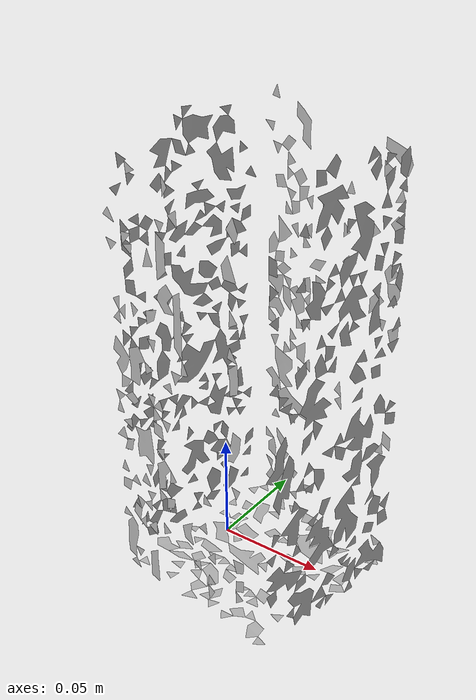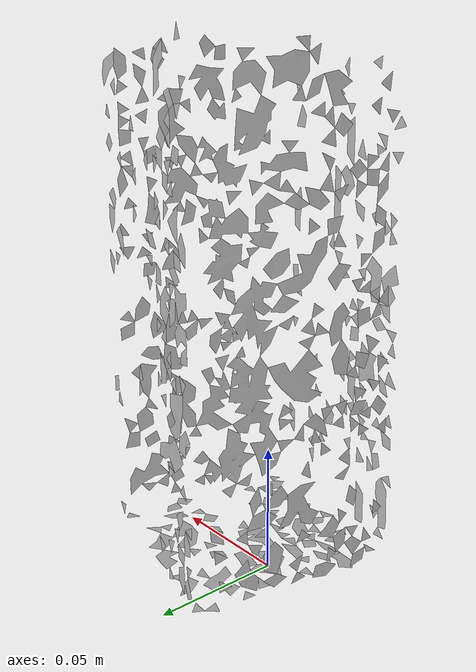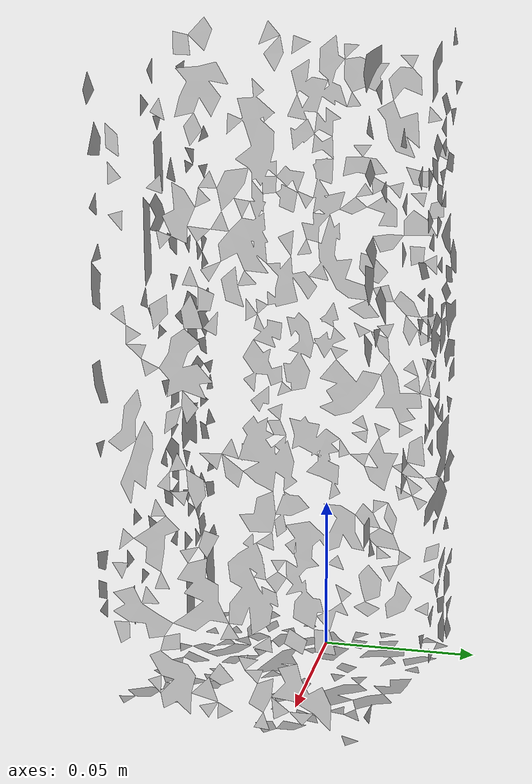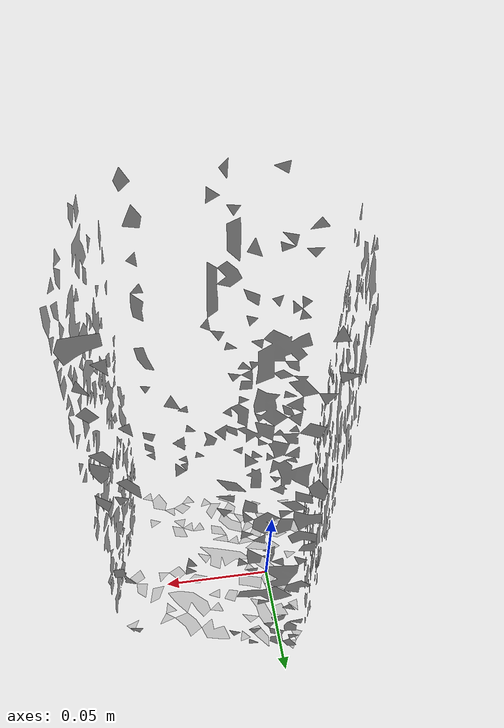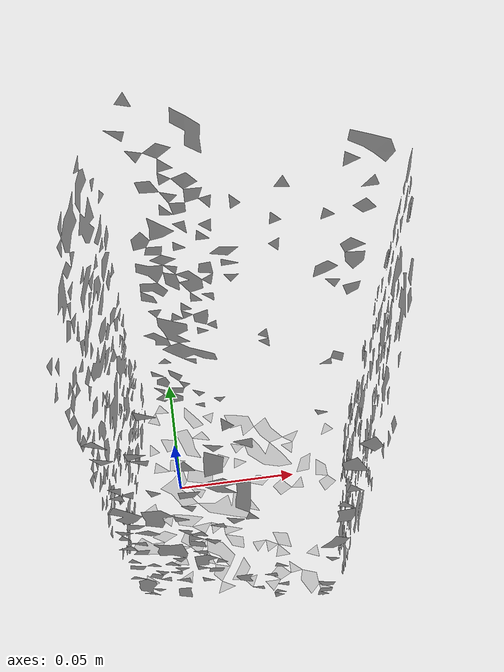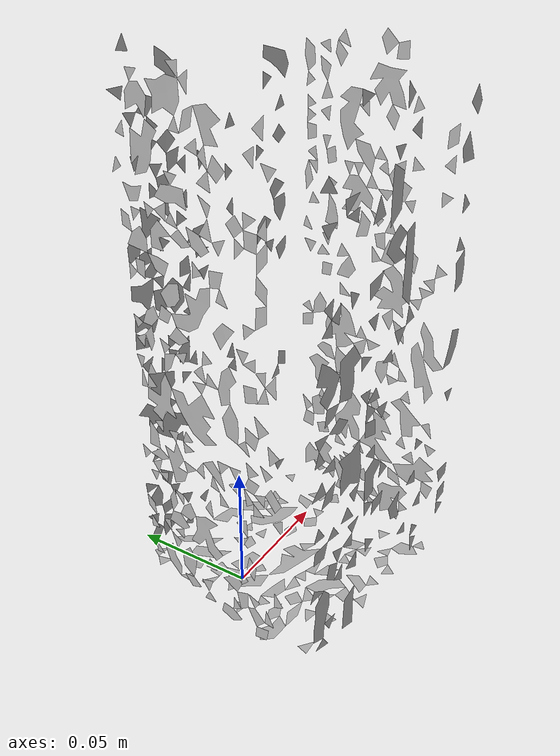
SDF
<?xml version="1.0" ?>
<sdf version="1.4">
  <model name='ycb_036_wood_block'>
    <link name='body'>
      <inertial>
        <mass>0.729</mass>
        <pose>0.0233730518782 -0.0102736262335 0.102769192541 0 0 0</pose>
        <inertia>
          <ixx>0.00300270967879</ixx>
          <ixy>5.76405311296e-06</ixy>
          <ixz>1.51830180861e-05</ixz>
          <iyy>0.00301400097068</iyy>
          <iyz>9.15504989042e-06</iyz>
          <izz>0.000934651925538</izz>
        </inertia>
      </inertial>
      <visual name='ycb_036_wood_block_visual'>
        <pose>0 0 0 0 0 0</pose>
        <geometry>
          <mesh>
            <uri>model://ycb_036_wood_block/meshes/textured.dae</uri>
          </mesh>
        </geometry>
      </visual>
      <collision name='ycb_036_wood_block_collision'>
        <pose>0 0 0 0 0 0</pose>
        <geometry>
          <mesh>
            <uri>model://ycb_036_wood_block/meshes/nontextured.stl</uri>
          </mesh>
        </geometry>
        <max_contacts>10</max_contacts>
      </collision>
    </link>
  </model>
</sdf>
